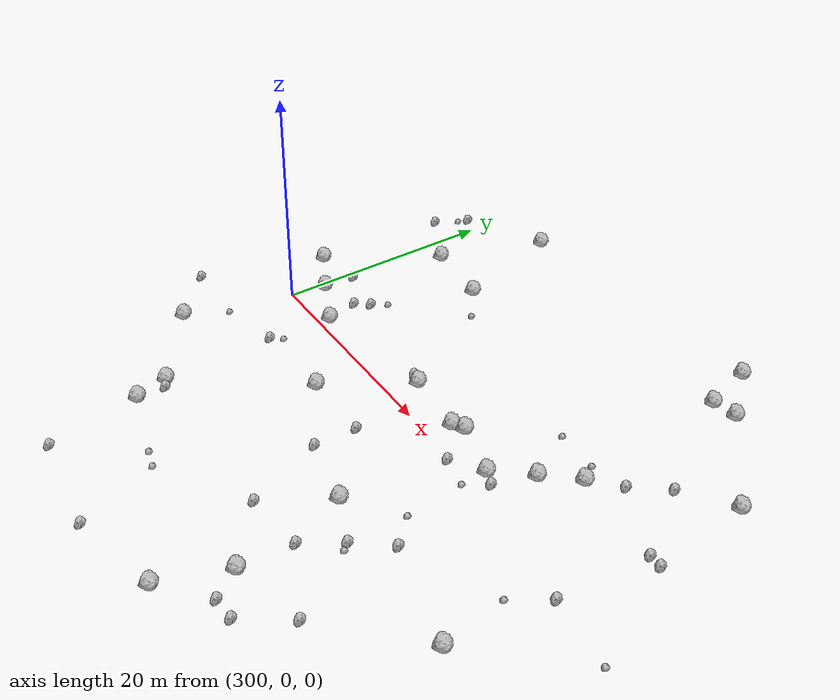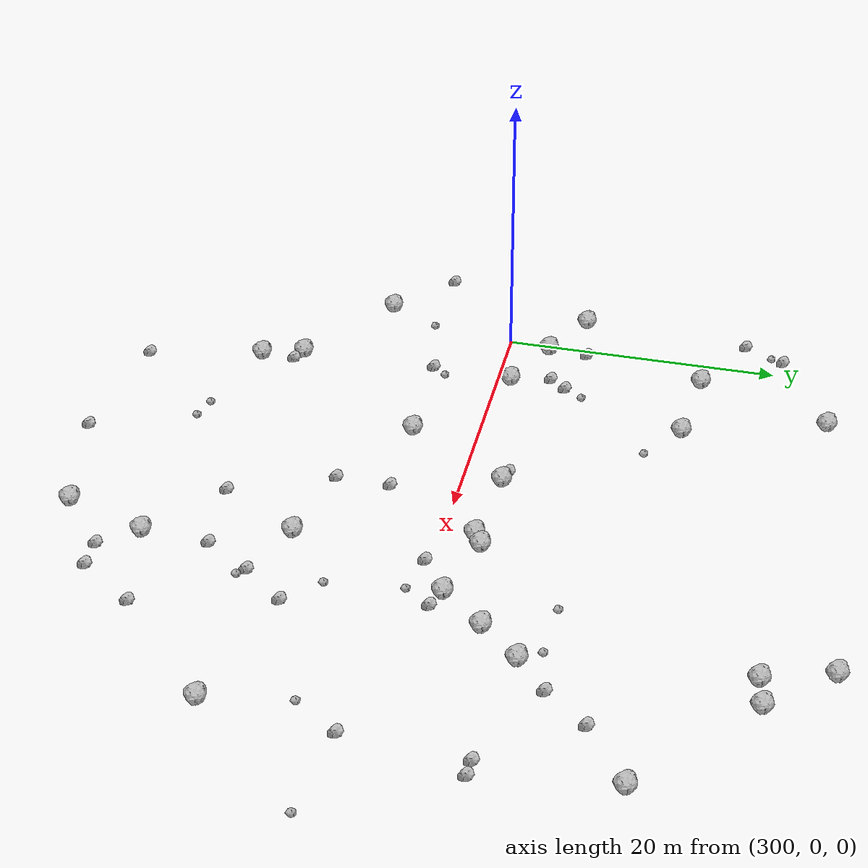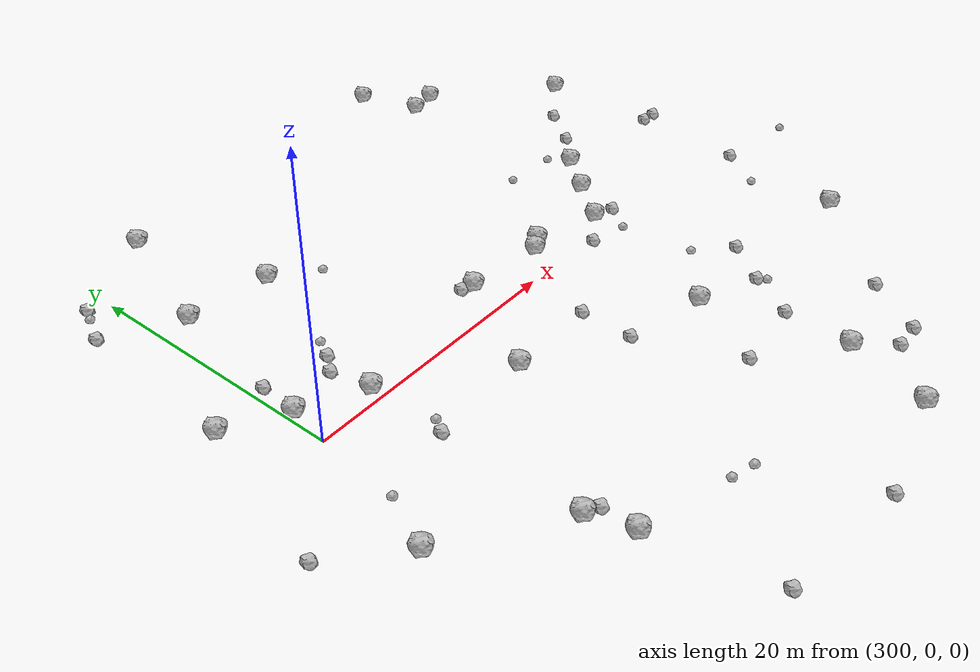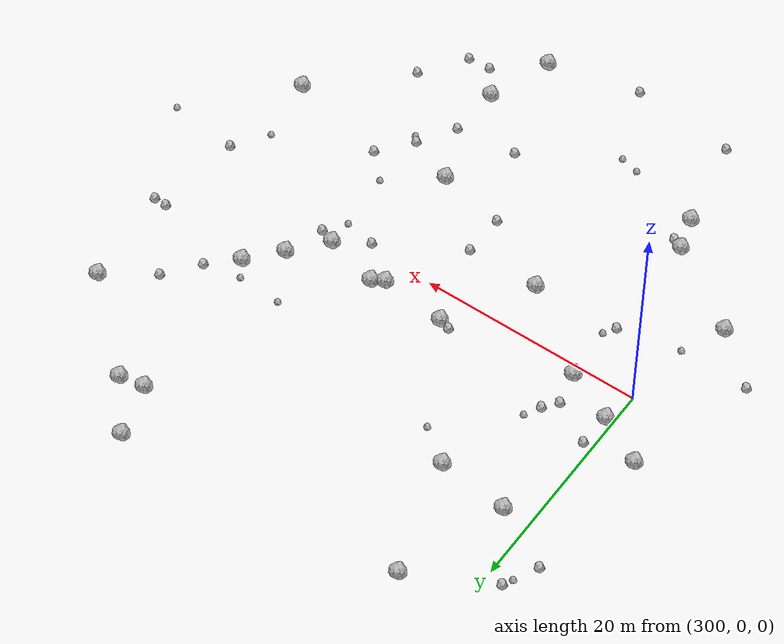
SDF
<sdf version="1.6">
 <world name="default">
  <include><uri>model://sun</uri></include>
  <model name="rock1_8_3">
   <include><uri>model://rock1</uri><pose>332.40979939111764 21.98787113599697 0.5 0 0 0</pose></include>
  </model>
  <model name="rock1_8_4">
   <include><uri>model://rock1</uri><pose>334.6466958065383 22.374213791281676 0.5 0 0 0</pose></include>
  </model>
  <model name="rock1_8_5">
   <include><uri>model://rock1</uri><pose>329.0126966160046 1.3378454237014097 0.5 0 0 0</pose></include>
  </model>
  <model name="rock1_8_6">
   <include><uri>model://rock1</uri><pose>323.9997751559669 2.745830915167261 0.5 0 0 0</pose></include>
  </model>
  <model name="rock1_8_7">
   <include><uri>model://rock1</uri><pose>330.9628755309547 26.61322887312288 0.5 0 0 0</pose></include>
  </model>
  <model name="rock1_8_8">
   <include><uri>model://rock1</uri><pose>322.96130344468605 2.137510573776204 0.5 0 0 0</pose></include>
  </model>
  <model name="rock1_8_9">
   <include><uri>model://rock1</uri><pose>296.52769185079586 5.285841976335689 0.5 0 0 0</pose></include>
  </model>
  <model name="rock1_8_10">
   <include><uri>model://rock1</uri><pose>302.43773794943775 14.820517425620302 0.5 0 0 0</pose></include>
  </model>
  <model name="rock1_8_11">
   <include><uri>model://rock1</uri><pose>342.7143478307141 15.303659802676833 0.5 0 0 0</pose></include>
  </model>
  <model name="rock1_8_12">
   <include><uri>model://rock1</uri><pose>325.3455365862423 -9.844111934986607 0.5 0 0 0</pose></include>
  </model>
  <model name="rock1_8_13">
   <include><uri>model://rock1</uri><pose>312.6144480347276 -4.666581754432812 0.5 0 0 0</pose></include>
  </model>
  <model name="rock1_8_14">
   <include><uri>model://rock1</uri><pose>325.5137883169983 -25.651567489666327 0.5 0 0 0</pose></include>
  </model>
  <model name="rock1_8_15">
   <include><uri>model://rock1</uri><pose>316.9948159245838 2.750085697792329 0.5 0 0 0</pose></include>
  </model>
  <model name="rock1_8_16">
   <include><uri>model://rock1</uri><pose>305.9978702995066 -18.039463054714425 0.5 0 0 0</pose></include>
  </model>
  <model name="rock1_8_17">
   <include><uri>model://rock1</uri><pose>327.5250134187977 -19.74077271225191 0.5 0 0 0</pose></include>
  </model>
  <model name="rock1_8_18">
   <include><uri>model://rock1</uri><pose>305.67164575138037 24.29004783865542 0.5 0 0 0</pose></include>
  </model>
  <model name="rock1_8_19">
   <include><uri>model://rock1</uri><pose>308.69791052057445 14.16420152308806 0.5 0 0 0</pose></include>
  </model>
  <model name="rock1_8_20">
   <include><uri>model://rock1</uri><pose>333.9539060319846 7.2009088719216905 0.5 0 0 0</pose></include>
  </model>
  <model name="rock1_8_21">
   <include><uri>model://rock1</uri><pose>297.62186599177613 -9.884085589735705 0.5 0 0 0</pose></include>
  </model>
  <model name="rock1_8_22">
   <include><uri>model://rock1</uri><pose>305.15286621078053 0.9708812159795741 0.5 0 0 0</pose></include>
  </model>
  <model name="rock1_8_23">
   <include><uri>model://rock1</uri><pose>300.66299885136686 3.0637398654204446 0.5 0 0 0</pose></include>
  </model>
  <model name="rock1_8_24">
   <include><uri>model://rock1</uri><pose>331.54635737212277 4.400029032359484 0.5 0 0 0</pose></include>
  </model>
  <model name="rock1_8_25">
   <include><uri>model://rock1</uri><pose>341.4431388274628 -11.08139080888963 0.5 0 0 0</pose></include>
  </model>
  <model name="rock1_8_26">
   <include><uri>model://rock1</uri><pose>305.07512601110926 -15.021247360493167 0.5 0 0 0</pose></include>
  </model>
  <model name="rock2_8_0">
   <include><uri>model://rock2</uri><pose>330.3769377573402 0.8046077395584632 0.3 0 0 0</pose></include>
  </model>
  <model name="rock2_8_1">
   <include><uri>model://rock2</uri><pose>329.6450147506614 -11.655455618451867 0.3 0 0 0</pose></include>
  </model>
  <model name="rock2_8_2">
   <include><uri>model://rock2</uri><pose>322.07541067291635 -15.508160759535507 0.3 0 0 0</pose></include>
  </model>
  <model name="rock2_8_3">
   <include><uri>model://rock2</uri><pose>342.32087921978564 -2.022630865886068 0.3 0 0 0</pose></include>
  </model>
  <model name="rock2_8_4">
   <include><uri>model://rock2</uri><pose>293.09702573068546 -5.973792131847464 0.3 0 0 0</pose></include>
  </model>
  <model name="rock2_8_5">
   <include><uri>model://rock2</uri><pose>327.6477611944587 -14.940186733722399 0.3 0 0 0</pose></include>
  </model>
  <model name="rock2_8_6">
   <include><uri>model://rock2</uri><pose>319.1003280330474 -8.522508792340066 0.3 0 0 0</pose></include>
  </model>
  <model name="rock2_8_7">
   <include><uri>model://rock2</uri><pose>315.9228261092452 3.0379565440464376 0.3 0 0 0</pose></include>
  </model>
  <model name="rock2_8_8">
   <include><uri>model://rock2</uri><pose>305.9797283986018 -15.522952976422191 0.3 0 0 0</pose></include>
  </model>
  <model name="rock2_8_9">
   <include><uri>model://rock2</uri><pose>326.20821883027065 -0.4717665750623894 0.3 0 0 0</pose></include>
  </model>
  <model name="rock2_8_10">
   <include><uri>model://rock2</uri><pose>343.9135430336397 6.242998366961196 0.3 0 0 0</pose></include>
  </model>
  <model name="rock2_8_11">
   <include><uri>model://rock2</uri><pose>300.8027406695076 6.003606343343051 0.3 0 0 0</pose></include>
  </model>
  <model name="rock2_8_12">
   <include><uri>model://rock2</uri><pose>331.46953784493473 -22.164159688777797 0.3 0 0 0</pose></include>
  </model>
  <model name="rock2_8_13">
   <include><uri>model://rock2</uri><pose>298.56340063080484 20.556739236648795 0.3 0 0 0</pose></include>
  </model>
  <model name="rock2_8_14">
   <include><uri>model://rock2</uri><pose>342.7121985098977 6.29262234578713 0.3 0 0 0</pose></include>
  </model>
  <model name="rock2_8_15">
   <include><uri>model://rock2</uri><pose>307.64322712085175 -26.39489974462972 0.3 0 0 0</pose></include>
  </model>
  <model name="rock2_8_16">
   <include><uri>model://rock2</uri><pose>304.80783465178797 -4.945888602384095 0.3 0 0 0</pose></include>
  </model>
  <model name="rock2_8_17">
   <include><uri>model://rock2</uri><pose>319.15630233595203 -4.652825849800827 0.3 0 0 0</pose></include>
  </model>
  <model name="rock2_8_18">
   <include><uri>model://rock2</uri><pose>336.2405396277029 9.404957817773074 0.3 0 0 0</pose></include>
  </model>
  <model name="rock2_8_19">
   <include><uri>model://rock2</uri><pose>334.18780149409434 -18.185167121064175 0.3 0 0 0</pose></include>
  </model>
  <model name="rock2_8_20">
   <include><uri>model://rock2</uri><pose>304.43688060416576 3.899304186148534 0.3 0 0 0</pose></include>
  </model>
  <model name="rock2_8_21">
   <include><uri>model://rock2</uri><pose>331.971803798174 -8.690776711496234 0.3 0 0 0</pose></include>
  </model>
  <model name="rock2_8_22">
   <include><uri>model://rock2</uri><pose>338.50128719812085 12.36114328460674 0.3 0 0 0</pose></include>
  </model>
  <model name="rock2_8_23">
   <include><uri>model://rock2</uri><pose>297.1175739110845 17.64020815298545 0.3 0 0 0</pose></include>
  </model>
  <model name="rock2_8_24">
   <include><uri>model://rock2</uri><pose>329.35686951506113 -22.252226531476744 0.3 0 0 0</pose></include>
  </model>
  <model name="rock2_8_25">
   <include><uri>model://rock2</uri><pose>305.3908795701217 5.1276609821322765 0.3 0 0 0</pose></include>
  </model>
  <model name="rock2_8_26">
   <include><uri>model://rock2</uri><pose>317.1598597815099 -27.55650215064824 0.3 0 0 0</pose></include>
  </model>
  <model name="rock3_8_0">
   <include><uri>model://rock3</uri><pose>329.6715693340758 -6.4586154664493804 0.2 0 0 0</pose></include>
  </model>
  <model name="rock3_8_1">
   <include><uri>model://rock3</uri><pose>312.5383611674413 -19.945953127345078 0.2 0 0 0</pose></include>
  </model>
  <model name="rock3_8_2">
   <include><uri>model://rock3</uri><pose>348.74977197620206 -2.87825884822583 0.2 0 0 0</pose></include>
  </model>
  <model name="rock3_8_3">
   <include><uri>model://rock3</uri><pose>332.9020236526714 8.666169408156243 0.2 0 0 0</pose></include>
  </model>
  <model name="rock3_8_4">
   <include><uri>model://rock3</uri><pose>298.1233249608161 19.656642568524212 0.2 0 0 0</pose></include>
  </model>
  <model name="rock3_8_5">
   <include><uri>model://rock3</uri><pose>299.3215866808074 -6.158860745773438 0.2 0 0 0</pose></include>
  </model>
  <model name="rock3_8_6">
   <include><uri>model://rock3</uri><pose>330.1170866999836 -12.255993374416935 0.2 0 0 0</pose></include>
  </model>
  <model name="rock3_8_7">
   <include><uri>model://rock3</uri><pose>329.0571281051134 -1.106341873448855 0.2 0 0 0</pose></include>
  </model>
  <model name="rock3_8_8">
   <include><uri>model://rock3</uri><pose>305.4727123133156 -3.9585475700919197 0.2 0 0 0</pose></include>
  </model>
  <model name="rock3_8_9">
   <include><uri>model://rock3</uri><pose>306.1345412792507 6.461675020318765 0.2 0 0 0</pose></include>
  </model>
  <model name="rock3_8_10">
   <include><uri>model://rock3</uri><pose>340.2620686280401 -5.165400707653028 0.2 0 0 0</pose></include>
  </model>
  <model name="rock3_8_11">
   <include><uri>model://rock3</uri><pose>328.8688731877026 8.880542589103989 0.2 0 0 0</pose></include>
  </model>
  <model name="rock3_8_12">
   <include><uri>model://rock3</uri><pose>311.6810715602644 11.894734524767209 0.2 0 0 0</pose></include>
  </model>
  <model name="rock3_8_13">
   <include><uri>model://rock3</uri><pose>314.25061312657346 -20.412833947188822 0.2 0 0 0</pose></include>
  </model>
 </world>
</sdf>
